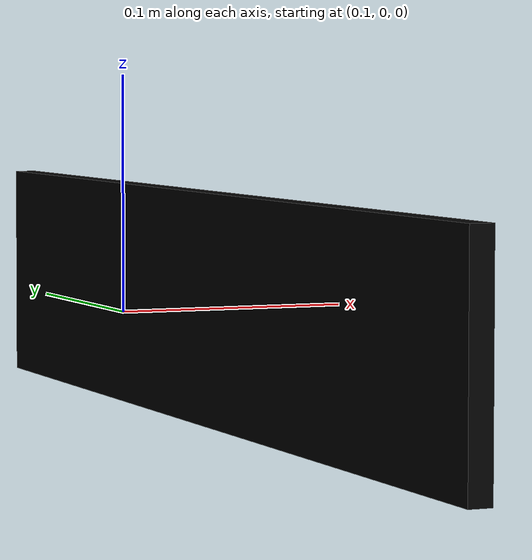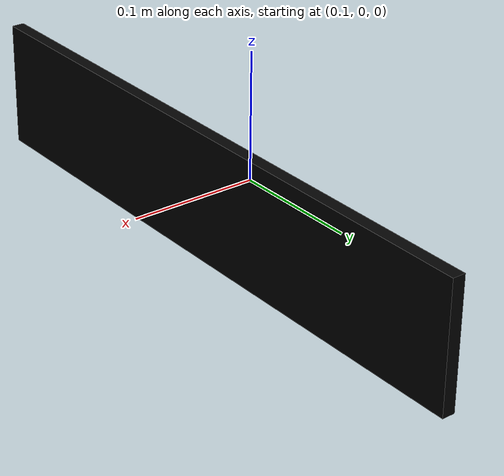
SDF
<?xml version="1.0" ?>
<sdf version="1.8">
    <model name="workspace_wall_bounds">
      <link name="upper_Wall">
        <collision name='upper_Wall_collision'>
          <geometry>
            <box>
              <size>0.01 0.5 0.1</size>
            </box>
          </geometry>
        </collision>
        <visual name = 'upper_Wall_visual'>
          <pose>0.14 0 0 0 0 0</pose>
          <geometry>
            <box>
              <size>0.01 0.5 0.1</size>
            </box>
          </geometry>
          <material>
            <diffuse>0.01 0.01 0.01 1</diffuse>
            <ambient>0.01 0.01 0.01 1</ambient>
        </material>
        </visual>
      </link>
    </model>
</sdf>
